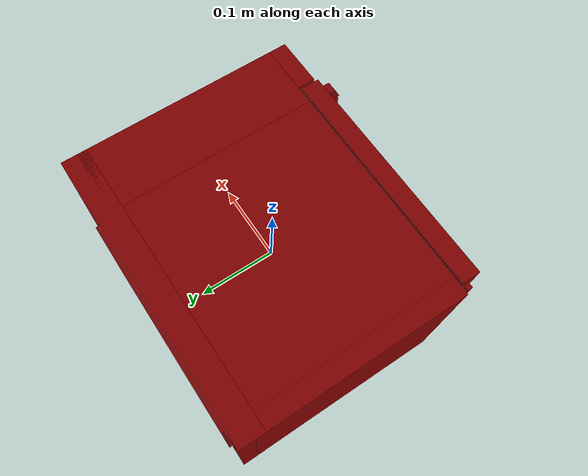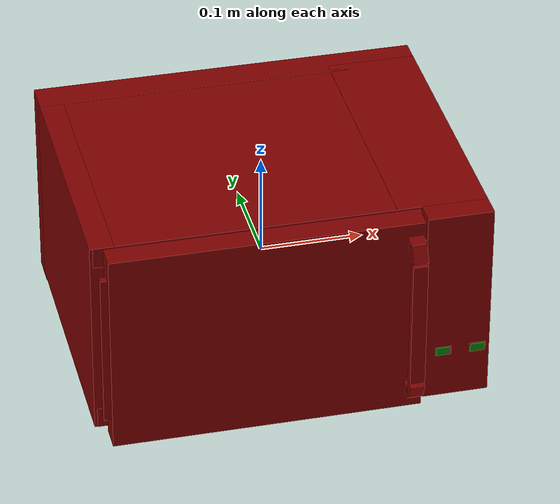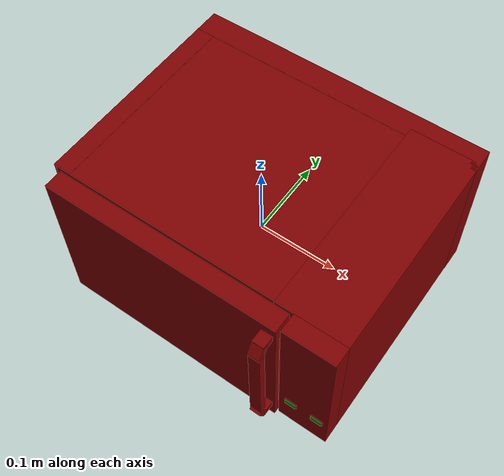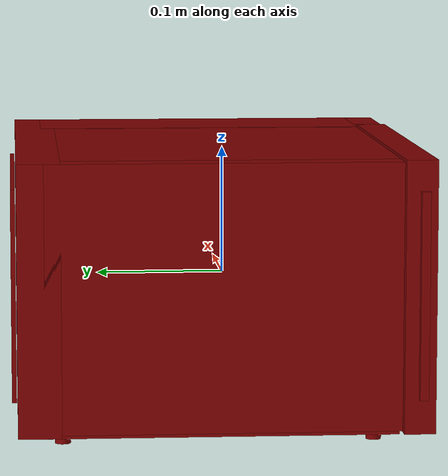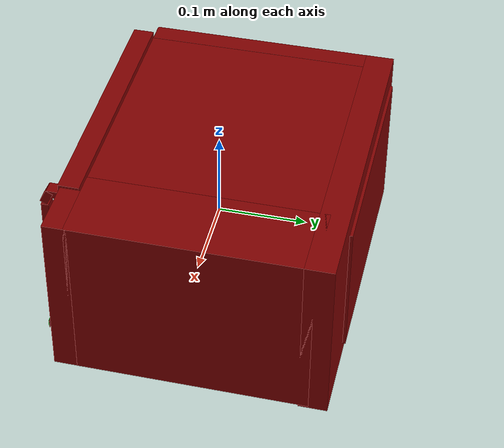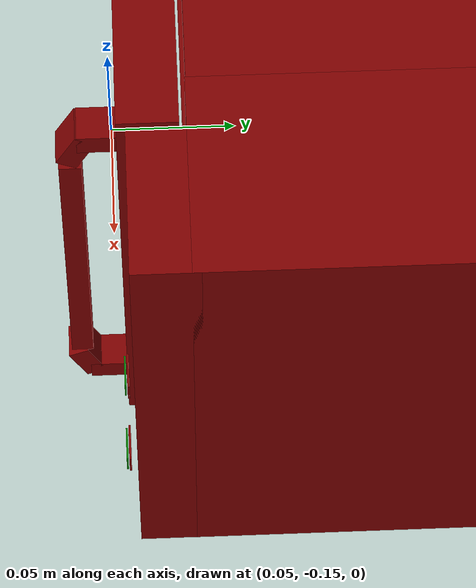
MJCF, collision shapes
<mujoco model="model">
  <compiler angle="radian"/>
  <asset>
    <mesh file="visuals/door.obj" name="door_vis"/>
    <mesh file="visuals/door_Clear.obj" name="door_Clear_vis"/>
    <mesh file="visuals/Body001.obj" name="Body001_vis"/>
    <mesh file="visuals/Button001.obj" name="Button001_vis"/>
    <mesh file="visuals/Button002.obj" name="Button002_vis"/>
    <mesh file="visuals/Disc001.obj" name="Disc001_vis"/>
    <texture file="visuals/T_BC001.png" name="Body001_material" type="2d"/>
    <material name="Body001_material" rgba="1 1 1 1.0" texture="Body001_material" shininess="0.4472135901451111" specular="0.3103448502657381"/>
    <texture file="visuals/T_BC001.png" name="door_material" type="2d"/>
    <material name="door_material" rgba="1 1 1 1.0" texture="door_material" shininess="0.4472135901451111" specular="0.3103448502657381"/>
    <texture file="visuals/T_BC001.png" name="door_Clear_material" type="2d"/>
    <material name="door_Clear_material" rgba="1 1 1 0.8126302361488342" texture="door_Clear_material" shininess="0.4472135901451111" specular="0.3103448502657381"/>
    <texture file="visuals/T_BC001.png" name="Button001_material" type="2d"/>
    <material name="Button001_material" rgba="1 1 1 1.0" texture="Button001_material" shininess="0.4472135901451111" specular="0.3103448502657381"/>
    <texture file="visuals/T_BC001.png" name="Button002_material" type="2d"/>
    <material name="Button002_material" rgba="1 1 1 1.0" texture="Button002_material" shininess="0.4472135901451111" specular="0.3103448502657381"/>
    <texture file="visuals/T_BC001.png" name="Disc001_material" type="2d"/>
    <material name="Disc001_material" rgba="1 1 1 1.0" texture="Disc001_material" shininess="0.4472135901451111" specular="0.3103448502657381"/>
  </asset>
  <default>
    <default class="visual">
      <geom conaffinity="0" contype="0" group="1" type="mesh"/>
    </default>
    <default class="collision">
      <geom group="0" rgba="0.5 0 0 0.5"/>
    </default>
    <default class="spawn">
      <geom group="0" rgba="1 1 1 0.5" contype="0" conaffinity="0"/>
      <site group="0" rgba="1 1 1 0.5"/>
    </default>
    <default class="region">
      <geom group="1" conaffinity="0" contype="0" rgba="0 1 0 0"/>
    </default>
  </default>
  <worldbody>
    <body>
      <body name="object">
        <geom class="collision" type="box" pos="-0.03174293413758278 -0.002631165087223053 -0.06219571456313133" size="0.09754028171300888 0.09754028171300888 0.0019993516616523266" quat="1.0 0.0 0.0 0.0" name="tray" rgba="0 1 0 0.5"/>
        <geom class="collision" type="box" pos="0.17535318434238434 -0.14766398072242737 -0.04177258536219597" size="0.006919820327311754 0.00033704744419083 0.004268535878509283" quat="1.0 0.0 0.0 0.0" name="stop_button" rgba="0.0 0.5 0 0.5"/>
        <geom class="collision" type="box" pos="0.14191147685050964 -0.14766398072242737 -0.04151224344968796" size="0.006756139919161797 0.000329074973706156 0.004167566075921059" quat="1.0 0.0 0.0 0.0" name="start_button" rgba="0.0 0.5 0 0.5"/>
        <geom mesh="Body001_vis" type="mesh" solimp="0.998 0.998 0.001" solref="0.001 1" density="100" friction="0.95 0.3 0.1" class="visual" material="Body001_material"/>
        <geom class="collision" type="box" pos="6.606569513678551e-09 0.1484101116657257 0.004834184423089027" size="0.1879674643278122 0.016206447035074234 0.10155556350946426" quat="1.0 0.0 0.0 0.0"/>
        <geom class="collision" type="box" pos="-0.1763664186000824 0.01216458436101675 0.005948532372713089" size="0.01160105224698782 0.13234779238700867 0.10032780468463898" quat="1.0 0.0 0.0 0.0"/>
        <geom class="collision" type="box" pos="0.14459343254566193 0.01138284057378769 0.005776804406195879" size="0.043374042958021164 0.13212722539901733 0.10061294585466385" quat="1.0 0.0 0.0 0.0"/>
        <geom class="collision" type="box" pos="-0.03404968976974487 0.011772623285651207 0.0958830863237381" size="0.15090252459049225 0.13220150768756866 0.010300111025571823" quat="1.0 0.0 0.0 0.0"/>
        <geom class="collision" type="box" pos="-0.03427392244338989 0.0062049562111496925 -0.08433466404676437" size="0.15090252459049225 0.1264907717704773 0.010389885865151882" quat="1.0 0.0 0.0 0.0"/>
        <geom class="collision" type="box" pos="0.15627950429916382 -0.1303476095199585 0.005812410730868578" size="0.031687963753938675 0.013174299150705338 0.10056848078966141" quat="1.0 0.0 0.0 0.0"/>
        <geom class="collision" type="box" pos="-0.02871865965425968 0.16702479124069214 0.005614798050373793" size="0.13424161076545715 0.001754502416588366 0.07982275635004044" quat="1.0 0.0 0.0 0.0"/>
        <geom class="collision" type="cylinder" pos="-0.15463966131210327 -0.10257827490568161 -0.10302229970693588" size="0.005849474109709263 0.003367448691278696" quat="1.0 0.0 0.0 0.0"/>
        <geom class="collision" type="cylinder" pos="0.15480411052703857 -0.10257827490568161 -0.10302229970693588" size="0.005849474109709263 0.003367448691278696" quat="1.0 0.0 0.0 0.0"/>
        <geom class="collision" type="cylinder" pos="-0.15463966131210327 0.13112929463386536 -0.10302229970693588" size="0.005849474109709263 0.003367448691278696" quat="1.0 0.0 0.0 0.0"/>
        <geom class="collision" type="cylinder" pos="0.15480411052703857 0.13112929463386536 -0.10302229970693588" size="0.005849474109709263 0.003367448691278696" quat="1.0 0.0 0.0 0.0"/>
        <geom class="collision" type="box" pos="0.1543380469083786 0.01668742299079895 -0.09689715504646301" size="0.014465576969087124 0.1375555694103241 0.0042976136319339275" quat="1.0 0.0 0.0 0.0"/>
        <geom class="collision" type="box" pos="-0.15214432775974274 0.01668742299079895 -0.09689715504646301" size="0.014465576969087124 0.1375555694103241 0.0042976136319339275" quat="1.0 0.0 0.0 0.0"/>
        <body name="door">
          <joint axis="0.0 0.0 1.0" pos="-0.17473851144313812 -0.13428497314453125 0.009561501443386078" limited="true" name="microjoint" range="-1.5707963267948966 0.0" type="hinge" damping="1" frictionloss="1" armature=".01" stiffness="0.05"/>
          <geom mesh="door_vis" type="mesh" solimp="0.998 0.998 0.001" solref="0.001 1" density="100" friction="0.95 0.3 0.1" class="visual" material="door_material"/>
          <geom class="collision" type="box" pos="-0.027069643139839172 -0.13517749309539795 0.0033748981077224016" size="0.1487296223640442 0.011849697679281235 0.10301484167575836" quat="1.0 0.0 0.0 0.0"/>
          <geom class="collision" type="box" pos="0.1112891137599945 -0.1649865210056305 0.007569125387817621" size="0.00715562654659152 0.004358436446636915 0.06578723341226578" quat="1.0 0.0 0.0 0.0" name="door_handle"/>
          <geom class="collision" type="box" pos="0.1112891137599945 -0.16252881288528442 0.08310376107692719" size="0.00715562654659152 0.0043584443628787994 0.008434436284005642" quat="0.972201943397522 -0.2341439425945282 0.0 0.0"/>
          <geom class="collision" type="box" pos="0.1112891137599945 -0.1534487009048462 0.08829963207244873" size="0.00715562654659152 0.008529133163392544 0.0045446413569152355" quat="1.0 0.0 0.0 0.0"/>
          <geom class="collision" type="box" pos="0.1112891137599945 -0.16328147053718567 -0.06893109530210495" size="0.00715562654659152 0.0043584443628787994 0.008434436284005642" quat="0.21568623185157776 -0.976462721824646 0.0 0.0"/>
          <geom class="collision" type="box" pos="0.1112891137599945 -0.1534487009048462 -0.07521360367536545" size="0.00715562654659152 0.008529133163392544 0.0045446427538990974" quat="1.0 0.0 0.0 0.0"/>
          <body name="door_Clear">
            <geom mesh="door_Clear_vis" type="mesh" solimp="0.998 0.998 0.001" solref="0.001 1" density="100" friction="0.95 0.3 0.1" class="visual" material="door_Clear_material"/>
            <geom class="collision" type="box" pos="-0.0292211901396513 -0.1371697187423706 0.005138075444847345" size="0.15344098210334778 0.003317381953820586 0.07827337086200714" quat="1.0 0.0 0.0 0.0"/>
          </body>
        </body>
        <body name="Button001">
          <joint axis="0.0 1.0 0.0" pos="0.14207634329795837 -0.14664636552333832 -0.04156733304262161" limited="true" name="Button001_joint" range="0.0 0.001" type="slide" damping="1" frictionloss="1" armature=".01" stiffness="0.05"/>
          <geom mesh="Button001_vis" type="mesh" solimp="0.998 0.998 0.001" solref="0.001 1" density="100" friction="0.95 0.3 0.1" class="visual" material="Button001_material"/>
          <geom class="collision" type="box" pos="0.1420503556728363 -0.1465025246143341 -0.04170553386211395" size="0.007799377199262381 0.0003798885445576161 0.004545615985989571" quat="1.0 0.0 0.0 0.0"/>
        </body>
        <body name="Button002">
          <joint axis="0.0 1.0 0.0" pos="0.17523764073848724 -0.14664636552333832 -0.041391074657440186" limited="true" name="Button002_joint" range="0.0 0.001" type="slide" damping="1" frictionloss="1" armature=".01" stiffness="0.05"/>
          <geom mesh="Button002_vis" type="mesh" solimp="0.998 0.998 0.001" solref="0.001 1" density="100" friction="0.95 0.3 0.1" class="visual" material="Button002_material"/>
          <geom class="collision" type="box" pos="0.1752452701330185 -0.1465025246143341 -0.04150289297103882" size="0.007799377199262381 0.0003798885445576161 0.004545615985989571" quat="1.0 0.0 0.0 0.0"/>
        </body>
        <body name="Disc001">
          <joint axis="0.0 0.0 1.0" pos="-0.031159598380327225 -0.0032050125300884247 -0.069935142993927" limited="false" name="Disc001_joint" range="0 360" type="hinge" damping="1" frictionloss="1" armature=".01" stiffness="0.05"/>
          <geom mesh="Disc001_vis" type="mesh" solimp="0.998 0.998 0.001" solref="0.001 1" density="100" friction="0.95 0.3 0.1" class="visual" material="Disc001_material"/>
          <geom class="collision" type="cylinder" pos="-0.03070881962776184 -0.004263993818312883 -0.06871001422405243" size="0.1008535623550415 0.0024767254944890738" quat="1.0 0.0 0.0 0.0"/>
        </body>
        <geom class="region" name="reg_main" type="box" pos="0.0 0.010651350021362305 0.0" size="0.1879674792289734 0.15812793374061584 0.10638976097106934"/>
        <geom class="region" name="reg_int" type="box" pos="-0.02841027081012726 0.0075728073716163635 0.005777951329946518" size="0.13560014963150024 0.12527542561292648 0.07947513088583946"/>
      </body>
    </body>
  </worldbody>
  <actuator>
    <motor name="microjoint_actuator" joint="microjoint" gear="5"/>
    <motor name="Button001_joint_actuator" joint="Button001_joint" gear="0.1"/>
    <motor name="Button002_joint_actuator" joint="Button002_joint" gear="0.1"/>
    <motor name="Disc001_joint_actuator" joint="Disc001_joint" gear="10"/>
  </actuator>
</mujoco>
